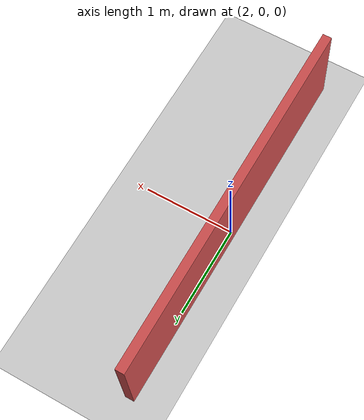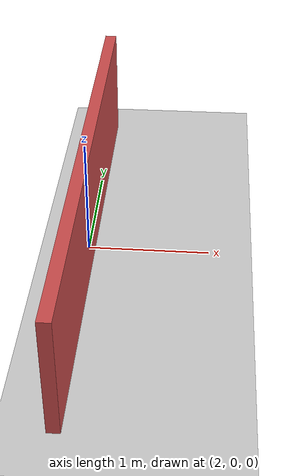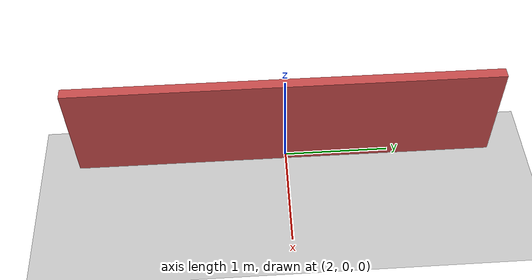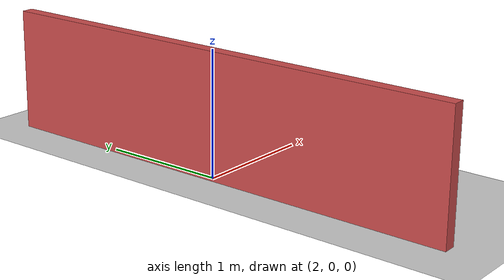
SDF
<?xml version="1.0" ?>
<sdf version="1.6">
  <world name="default">

    <!-- Common ground plane and sun -->
    <include>
      <uri>model://ground_plane</uri>
    </include>
    <include>
      <uri>model://sun</uri>
    </include>

    <!-- Fixed Wall Model -->
    <model name="obstacle_wall">
      <static>true</static>
      <pose>2 0 0.5 0 0 0</pose>
      <link name="link">
        <pose>0 0 0 0 0 0</pose>
        <collision name="collision">
          <geometry>
            <box><size>0.1 4 1</size></box>
          </geometry>
        </collision>
        <visual name="visual">
          <geometry>
            <box><size>0.1 4 1</size></box>
          </geometry>
          <material>
            <ambient>0.8 0.3 0.3 1</ambient>
            <diffuse>0.8 0.3 0.3 1</diffuse>
          </material>
        </visual>
      </link>
    </model>
    </world>
</sdf>
